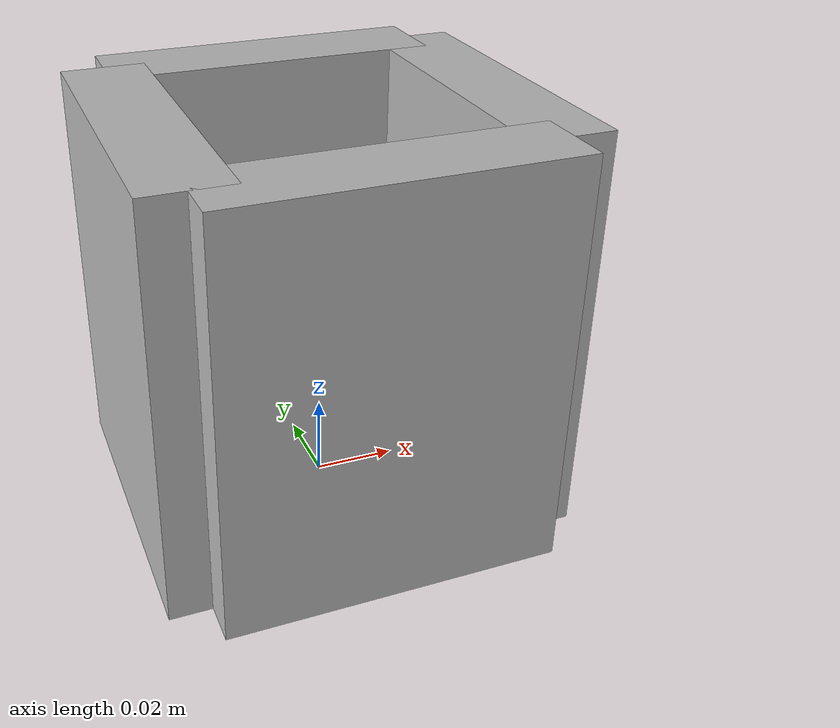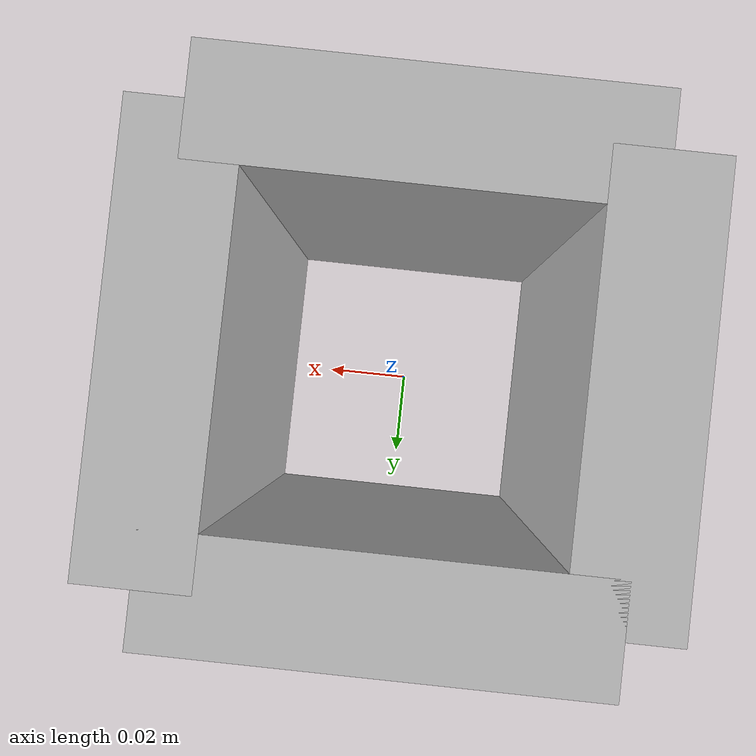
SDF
<?xml version="1.0"?>
<sdf version="1.7">
  <model name="tube">
    <link name="tube_body">
      <visual name="side1">
        <pose> 0.04 0 0.05 0 0 0</pose>
        <geometry>
          <box>
            <size>0.02 0.08 0.1</size>
          </box>
        </geometry>
        <material>
          <color rgba="0 0 1 0" />
        </material>
      </visual>
      <visual name="side2">
        <pose> -0.04 0 0.05 0 0 0</pose>
        <geometry>
          <box>
            <size>0.02 0.08 0.1</size>
          </box>
        </geometry>
        <material>
          <color rgba="0 0 1 0" />
        </material>
      </visual>
      <visual name="side3">
        <pose> 0 0.04 0.05 0 0 0</pose>
        <geometry>
          <box>
            <size>0.08 0.02 0.1</size>
          </box>
        </geometry>
        <material>
          <color rgba="0 0 1 0" />
        </material>
      </visual>
      <visual name="side4">
        <pose> 0 -0.04 0.05 0 0 0</pose>
        <geometry>
          <box>
            <size>0.08 0.02 0.1</size>
          </box>
        </geometry>
        <material>
          <color rgba="0 0 1 0" />
        </material>
      </visual>

      <collision name="side1">
        <pose> 0.04 0 0.05 0 0 0</pose>
        <geometry>
          <box>
            <size>0.02 0.08 0.1</size>
          </box>
        </geometry>
        <drake:proximity_properties>
          <drake:compliant_hydroelastic/>
          <drake:hydroelastic_modulus>1e7</drake:hydroelastic_modulus>
          <drake:mu_static>100.0</drake:mu_static>
          <drake:mu_dynamic>1.0</drake:mu_dynamic>
          <drake:hunt_crossley_dissipation>1.25</drake:hunt_crossley_dissipation>
        </drake:proximity_properties>
      </collision>
      <collision name="side2">
        <pose> -0.04 0 0.05 0 0 0</pose>
        <geometry>
          <box>
            <size>0.02 0.08 0.1</size>
          </box>
        </geometry>
        <drake:proximity_properties>
          <drake:compliant_hydroelastic/>
          <drake:hydroelastic_modulus>1e7</drake:hydroelastic_modulus>
          <drake:mu_static>100.0</drake:mu_static>
          <drake:mu_dynamic>1.0</drake:mu_dynamic>
          <drake:hunt_crossley_dissipation>1.25</drake:hunt_crossley_dissipation>
        </drake:proximity_properties>
      </collision>
      <collision name="side3">
        <pose> 0 0.04 0.05 0 0 0</pose>
        <geometry>
          <box>
            <size>0.08 0.02 0.1</size>
          </box>
        </geometry>
        <drake:proximity_properties>
          <drake:compliant_hydroelastic/>
          <drake:hydroelastic_modulus>1e7</drake:hydroelastic_modulus>
          <drake:mu_static>100.0</drake:mu_static>
          <drake:mu_dynamic>1.0</drake:mu_dynamic>
          <drake:hunt_crossley_dissipation>1.25</drake:hunt_crossley_dissipation>
        </drake:proximity_properties>
      </collision>
      <collision name="side4">
        <pose> 0 -0.04 0.05 0 0 0</pose>
        <geometry>
          <box>
            <size>0.08 0.02 0.1</size>
          </box>
        </geometry>
        <drake:proximity_properties>
          <drake:compliant_hydroelastic/>
          <drake:hydroelastic_modulus>1.0e7</drake:hydroelastic_modulus>
          <drake:mu_static>100.0</drake:mu_static>
          <drake:mu_dynamic>1.0</drake:mu_dynamic>
          <drake:hunt_crossley_dissipation>1.25</drake:hunt_crossley_dissipation>
        </drake:proximity_properties>
      </collision>
    </link>
  </model>
</sdf>
